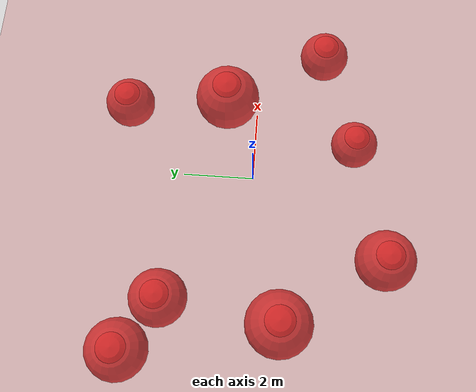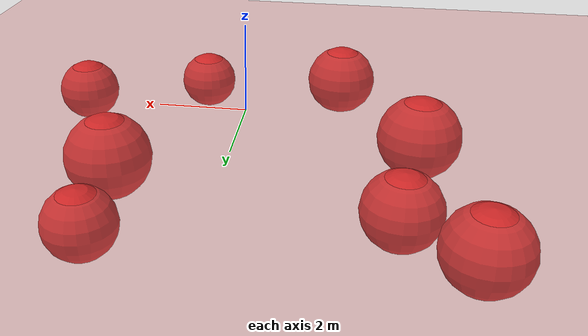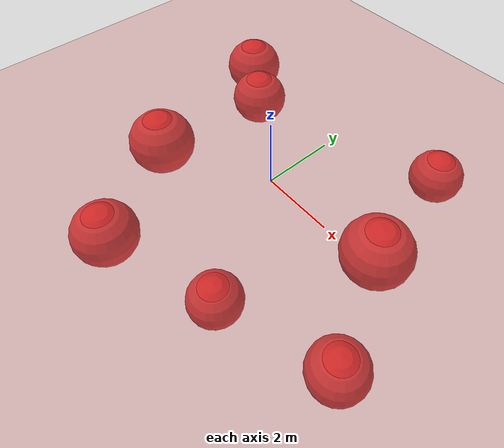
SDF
<?xml version="1.0" ?>
<sdf version="1.6">
  <world name="mars">
    <physics type="ode">
      <max_step_size>0.001</max_step_size>
      <real_time_factor>1.0</real_time_factor>
      <real_time_update_rate>1000.0</real_time_update_rate>
      <gravity>0 0 -3.711</gravity>
    </physics>

    <scene>
      <ambient>0.8 0.4 0.2 1.0</ambient>
      <background>0.8 0.4 0.2 1.0</background>
      <sky><clouds><speed>12</speed></clouds></sky>
    </scene>

    <!-- big flat plane -->
    <model name="mars_ground_plane">
      <static>true</static>
      <link name="link">
        <collision name="collision">
          <geometry>
            <plane><normal>0 0 1</normal><size>100 100</size></plane>
          </geometry>
          <surface>
        <friction>
          <ode>
            <mu>200</mu>    <!-- lateral friction -->
            <mu2>200</mu2>   <!-- spinning friction -->
          </ode>
        </friction>
      </surface>
        </collision>
        <visual name="visual">
          <geometry>
            <plane><normal>0 0 1</normal><size>100 100</size></plane>
          </geometry>
          <material>
            <ambient>0.8 0.36 0.36 1</ambient>
            <diffuse>0.8 0.36 0.36 1</diffuse>
          </material>
        </visual>
      </link>
    </model>

    <!-- BIGGER, MORE SPREAD craters: radius 0.7–1.0, rim 0.1m above ground -->
    <!-- center_z = -(radius - 0.1) -->
    <model name="crater_1">
      <static>true</static><link name="l">
        <collision name="c"><pose> 3.0  1.0 -0.90 0 0 0</pose>
          <geometry><sphere><radius>1.0</radius></sphere></geometry>
        </collision>
        <visual name="v"><pose> 3.0  1.0 -0.90 0 0 0</pose>
          <geometry><sphere><radius>1.0</radius></sphere></geometry>
          <material><script><uri>file://media/materials/scripts/gazebo.material</uri><name>Gazebo/Red</name></script></material>
        </visual>
      </link>
    </model>

    <model name="crater_2">
      <static>true</static><link name="l">
        <collision name="c"><pose>-3.5  2.5 -0.75 0 0 0</pose>
          <geometry><sphere><radius>0.85</radius></sphere></geometry>
        </collision>
        <visual name="v"><pose>-3.5  2.5 -0.75 0 0 0</pose>
          <geometry><sphere><radius>0.85</radius></sphere></geometry>
          <material><script><uri>file://media/materials/scripts/gazebo.material</uri><name>Gazebo/Red</name></script></material>
        </visual>
      </link>
    </model>

    <model name="crater_3">
      <static>true</static><link name="l">
        <collision name="c"><pose> 1.5 -3.0 -0.60 0 0 0</pose>
          <geometry><sphere><radius>0.70</radius></sphere></geometry>
        </collision>
        <visual name="v"><pose> 1.5 -3.0 -0.60 0 0 0</pose>
          <geometry><sphere><radius>0.70</radius></sphere></geometry>
          <material><script><uri>file://media/materials/scripts/gazebo.material</uri><name>Gazebo/Red</name></script></material>
        </visual>
      </link>
    </model>

    <model name="crater_4">
      <static>true</static><link name="l">
        <collision name="c"><pose>-2.0 -4.0 -0.80 0 0 0</pose>
          <geometry><sphere><radius>0.90</radius></sphere></geometry>
        </collision>
        <visual name="v"><pose>-2.0 -4.0 -0.80 0 0 0</pose>
          <geometry><sphere><radius>0.90</radius></sphere></geometry>
          <material><script><uri>file://media/materials/scripts/gazebo.material</uri><name>Gazebo/Red</name></script></material>
        </visual>
      </link>
    </model>

    <model name="crater_5">
      <static>true</static><link name="l">
        <collision name="c"><pose> 4.5 -2.0 -0.65 0 0 0</pose>
          <geometry><sphere><radius>0.75</radius></sphere></geometry>
        </collision>
        <visual name="v"><pose> 4.5 -2.0 -0.65 0 0 0</pose>
          <geometry><sphere><radius>0.75</radius></sphere></geometry>
          <material><script><uri>file://media/materials/scripts/gazebo.material</uri><name>Gazebo/Red</name></script></material>
        </visual>
      </link>
    </model>

    <model name="crater_6">
      <static>true</static><link name="l">
        <collision name="c"><pose>-4.0 -1.0 -0.90 0 0 0</pose>
          <geometry><sphere><radius>1.00</radius></sphere></geometry>
        </collision>
        <visual name="v"><pose>-4.0 -1.0 -0.90 0 0 0</pose>
          <geometry><sphere><radius>1.00</radius></sphere></geometry>
          <material><script><uri>file://media/materials/scripts/gazebo.material</uri><name>Gazebo/Red</name></script></material>
        </visual>
      </link>
    </model>

    <model name="crater_7">
      <static>true</static><link name="l">
        <collision name="c"><pose> 2.5  4.0 -0.65 0 0 0</pose>
          <geometry><sphere><radius>0.75</radius></sphere></geometry>
        </collision>
        <visual name="v"><pose> 2.5  4.0 -0.65 0 0 0</pose>
          <geometry><sphere><radius>0.75</radius></sphere></geometry>
          <material><script><uri>file://media/materials/scripts/gazebo.material</uri><name>Gazebo/Red</name></script></material>
        </visual>
      </link>
    </model>

    <model name="crater_8">
      <static>true</static><link name="l">
        <collision name="c"><pose>-5.0  3.5 -0.80 0 0 0</pose>
          <geometry><sphere><radius>0.90</radius></sphere></geometry>
        </collision>
        <visual name="v"><pose>-5.0  3.5 -0.80 0 0 0</pose>
          <geometry><sphere><radius>0.90</radius></sphere></geometry>
          <material><script><uri>file://media/materials/scripts/gazebo.material</uri><name>Gazebo/Red</name></script></material>
        </visual>
      </link>
    </model>

    <!-- TWELVE larger rocks, ~0.2–0.4m radius, spread out -->
    <model name="rock_1"><static>true</static><link name="l"><pose> 1.0  1.0 0 0 0 0</pose><geometry><sphere><radius>0.20</radius></sphere></geometry></link></model>
    <model name="rock_2"><static>true</static><link name="l"><pose>-1.2  0.8 0 0 0 0</pose><geometry><sphere><radius>0.25</radius></sphere></geometry></link></model>
    <model name="rock_3"><static>true</static><link name="l"><pose> 0.5 -1.5 0 0 0 0</pose><geometry><sphere><radius>0.22</radius></sphere></geometry></link></model>
    <model name="rock_4"><static>true</static><link name="l"><pose>-0.7 -1.8 0 0 0 0</pose><geometry><sphere><radius>0.28</radius></sphere></geometry></link></model>
    <model name="rock_5"><static>true</static><link name="l"><pose> 2.5  0.0 0 0 0 0</pose><geometry><sphere><radius>0.30</radius></sphere></geometry></link></model>
    <model name="rock_6"><static>true</static><link name="l"><pose>-2.5  0.5 0 0 0 0</pose><geometry><sphere><radius>0.35</radius></sphere></geometry></link></model>
    <model name="rock_7"><static>true</static><link name="l"><pose> 3.0 -2.0 0 0 0 0</pose><geometry><sphere><radius>0.24</radius></sphere></geometry></link></model>
    <model name="rock_8"><static>true</static><link name="l"><pose>-3.0 -2.2 0 0 0 0</pose><geometry><sphere><radius>0.26</radius></sphere></geometry></link></model>
    <model name="rock_9"><static>true</static><link name="l"><pose> 4.5  1.5 0 0 0 0</pose><geometry><sphere><radius>0.32</radius></sphere></geometry></link></model>
    <model name="rock_10"><static>true</static><link name="l"><pose>-4.5  2.0 0 0 0 0</pose><geometry><sphere><radius>0.34</radius></sphere></geometry></link></model>
    <model name="rock_11"><static>true</static><link name="l"><pose> 5.0 -1.0 0 0 0 0</pose><geometry><sphere><radius>0.28</radius></sphere></geometry></link></model>
    <model name="rock_12"><static>true</static><link name="l"><pose>-5.0 -1.5 0 0 0 0</pose><geometry><sphere><radius>0.30</radius></sphere></geometry></link></model>

    <include><uri>model://sun</uri></include>
  </world>
</sdf>
